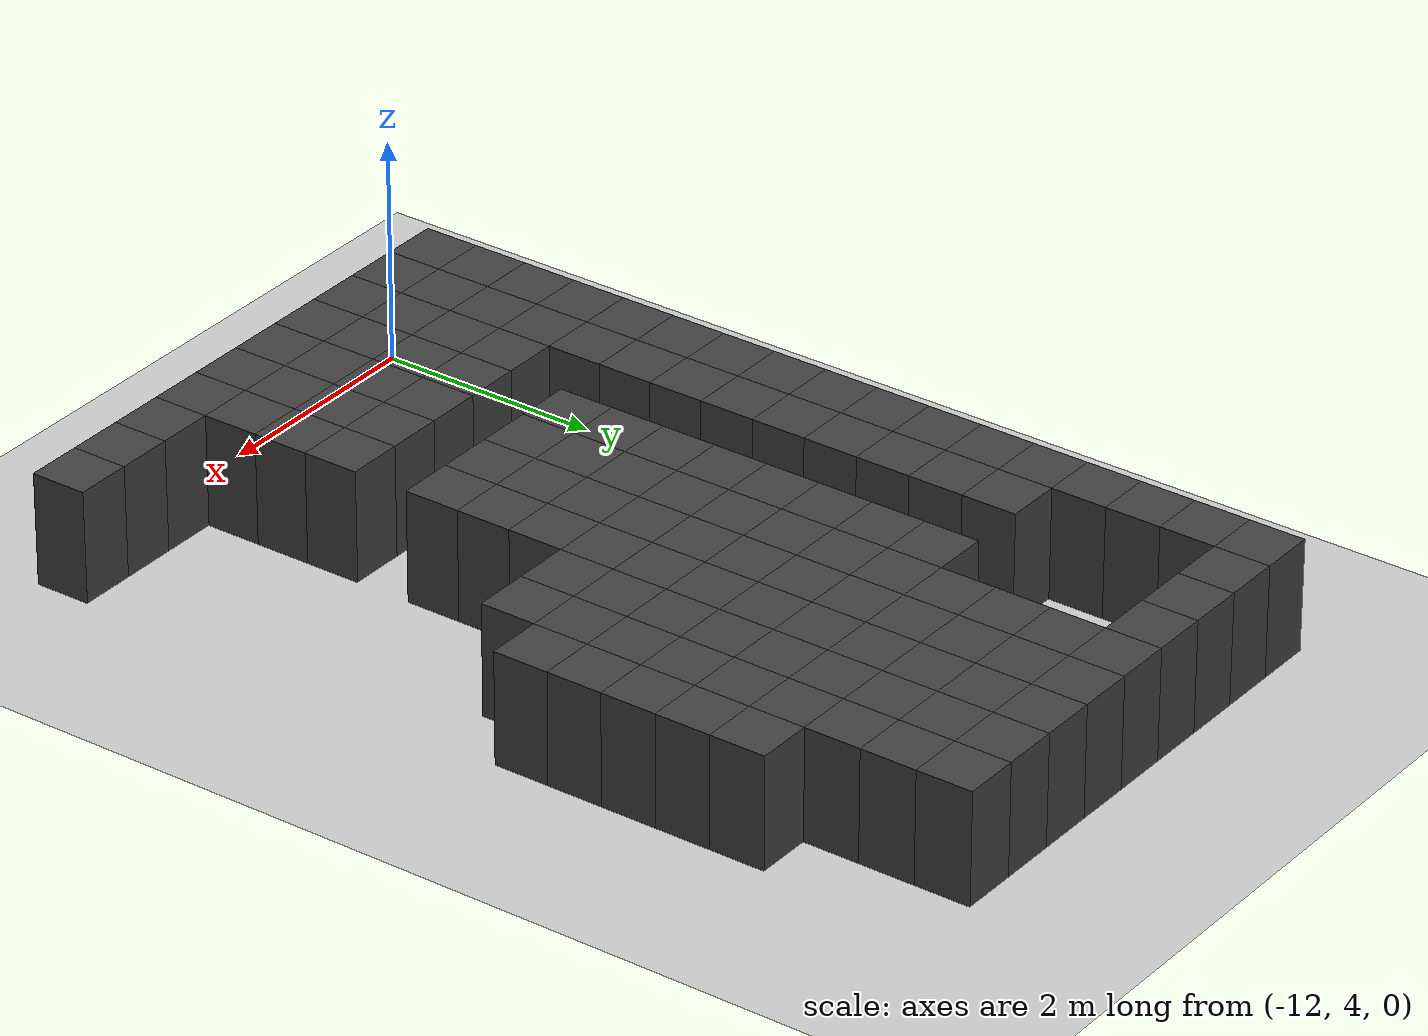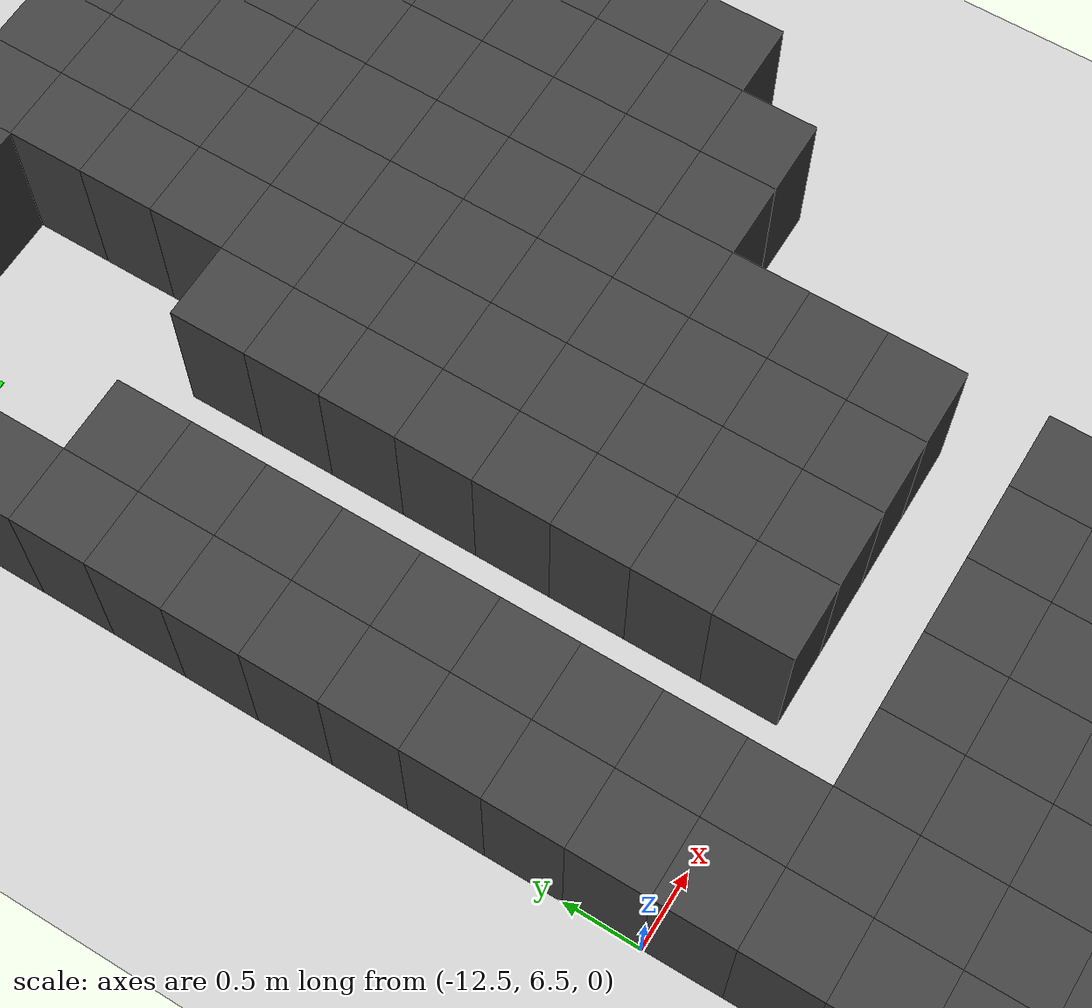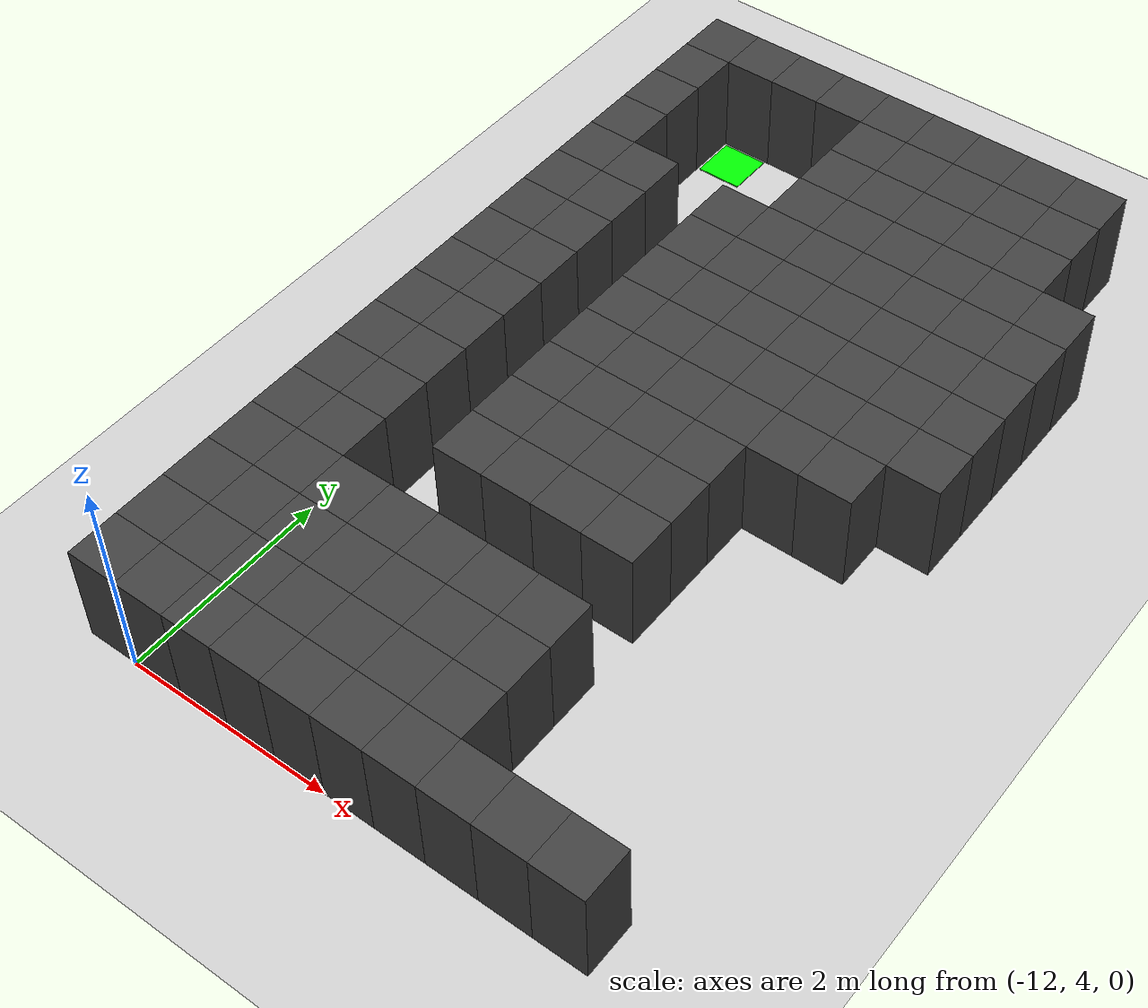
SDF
<sdf version="1.7">
 <world name="map_13994">
  <model name="ground_plane">
   <static>true</static>
   <link name="link">
    <collision name="collision">
     <geometry><plane><normal>0 0 1</normal><size>200 200</size></plane></geometry>
    </collision>
    <visual name="visual">
     <geometry><plane><normal>0 0 1</normal><size>200 200</size></plane></geometry>
     <material><ambient>0.8 0.8 0.8 1</ambient><diffuse>0.8 0.8 0.8 1</diffuse></material>
    </visual>
   </link>
  </model>
  <model name="maze_environment">
   <static>true</static>
   <link name="wall_0">
    <pose>-12.250 12.250 0.500 0 0 0</pose>
    <collision name="col"><geometry><box><size>0.5 0.5 1.0</size></box></geometry></collision>
    <visual name="vis">
     <geometry><box><size>0.5 0.5 1.0</size></box></geometry>
     <material><ambient>0.15 0.15 0.15 1</ambient><diffuse>0.25 0.25 0.25 1</diffuse></material>
    </visual>
   </link>
   <link name="wall_1">
    <pose>-11.750 12.250 0.500 0 0 0</pose>
    <collision name="col"><geometry><box><size>0.5 0.5 1.0</size></box></geometry></collision>
    <visual name="vis">
     <geometry><box><size>0.5 0.5 1.0</size></box></geometry>
     <material><ambient>0.15 0.15 0.15 1</ambient><diffuse>0.25 0.25 0.25 1</diffuse></material>
    </visual>
   </link>
   <link name="wall_2">
    <pose>-11.250 12.250 0.500 0 0 0</pose>
    <collision name="col"><geometry><box><size>0.5 0.5 1.0</size></box></geometry></collision>
    <visual name="vis">
     <geometry><box><size>0.5 0.5 1.0</size></box></geometry>
     <material><ambient>0.15 0.15 0.15 1</ambient><diffuse>0.25 0.25 0.25 1</diffuse></material>
    </visual>
   </link>
   <link name="wall_3">
    <pose>-10.750 12.250 0.500 0 0 0</pose>
    <collision name="col"><geometry><box><size>0.5 0.5 1.0</size></box></geometry></collision>
    <visual name="vis">
     <geometry><box><size>0.5 0.5 1.0</size></box></geometry>
     <material><ambient>0.15 0.15 0.15 1</ambient><diffuse>0.25 0.25 0.25 1</diffuse></material>
    </visual>
   </link>
   <link name="wall_4">
    <pose>-10.250 12.250 0.500 0 0 0</pose>
    <collision name="col"><geometry><box><size>0.5 0.5 1.0</size></box></geometry></collision>
    <visual name="vis">
     <geometry><box><size>0.5 0.5 1.0</size></box></geometry>
     <material><ambient>0.15 0.15 0.15 1</ambient><diffuse>0.25 0.25 0.25 1</diffuse></material>
    </visual>
   </link>
   <link name="wall_5">
    <pose>-9.750 12.250 0.500 0 0 0</pose>
    <collision name="col"><geometry><box><size>0.5 0.5 1.0</size></box></geometry></collision>
    <visual name="vis">
     <geometry><box><size>0.5 0.5 1.0</size></box></geometry>
     <material><ambient>0.15 0.15 0.15 1</ambient><diffuse>0.25 0.25 0.25 1</diffuse></material>
    </visual>
   </link>
   <link name="wall_6">
    <pose>-9.250 12.250 0.500 0 0 0</pose>
    <collision name="col"><geometry><box><size>0.5 0.5 1.0</size></box></geometry></collision>
    <visual name="vis">
     <geometry><box><size>0.5 0.5 1.0</size></box></geometry>
     <material><ambient>0.15 0.15 0.15 1</ambient><diffuse>0.25 0.25 0.25 1</diffuse></material>
    </visual>
   </link>
   <link name="wall_7">
    <pose>-8.750 12.250 0.500 0 0 0</pose>
    <collision name="col"><geometry><box><size>0.5 0.5 1.0</size></box></geometry></collision>
    <visual name="vis">
     <geometry><box><size>0.5 0.5 1.0</size></box></geometry>
     <material><ambient>0.15 0.15 0.15 1</ambient><diffuse>0.25 0.25 0.25 1</diffuse></material>
    </visual>
   </link>
   <link name="wall_8">
    <pose>-8.250 12.250 0.500 0 0 0</pose>
    <collision name="col"><geometry><box><size>0.5 0.5 1.0</size></box></geometry></collision>
    <visual name="vis">
     <geometry><box><size>0.5 0.5 1.0</size></box></geometry>
     <material><ambient>0.15 0.15 0.15 1</ambient><diffuse>0.25 0.25 0.25 1</diffuse></material>
    </visual>
   </link>
   <link name="wall_50">
    <pose>-12.250 11.750 0.500 0 0 0</pose>
    <collision name="col"><geometry><box><size>0.5 0.5 1.0</size></box></geometry></collision>
    <visual name="vis">
     <geometry><box><size>0.5 0.5 1.0</size></box></geometry>
     <material><ambient>0.15 0.15 0.15 1</ambient><diffuse>0.25 0.25 0.25 1</diffuse></material>
    </visual>
   </link>
   <link name="wall_51">
    <pose>-10.250 11.750 0.500 0 0 0</pose>
    <collision name="col"><geometry><box><size>0.5 0.5 1.0</size></box></geometry></collision>
    <visual name="vis">
     <geometry><box><size>0.5 0.5 1.0</size></box></geometry>
     <material><ambient>0.15 0.15 0.15 1</ambient><diffuse>0.25 0.25 0.25 1</diffuse></material>
    </visual>
   </link>
   <link name="wall_52">
    <pose>-9.750 11.750 0.500 0 0 0</pose>
    <collision name="col"><geometry><box><size>0.5 0.5 1.0</size></box></geometry></collision>
    <visual name="vis">
     <geometry><box><size>0.5 0.5 1.0</size></box></geometry>
     <material><ambient>0.15 0.15 0.15 1</ambient><diffuse>0.25 0.25 0.25 1</diffuse></material>
    </visual>
   </link>
   <link name="wall_53">
    <pose>-9.250 11.750 0.500 0 0 0</pose>
    <collision name="col"><geometry><box><size>0.5 0.5 1.0</size></box></geometry></collision>
    <visual name="vis">
     <geometry><box><size>0.5 0.5 1.0</size></box></geometry>
     <material><ambient>0.15 0.15 0.15 1</ambient><diffuse>0.25 0.25 0.25 1</diffuse></material>
    </visual>
   </link>
   <link name="wall_54">
    <pose>-8.750 11.750 0.500 0 0 0</pose>
    <collision name="col"><geometry><box><size>0.5 0.5 1.0</size></box></geometry></collision>
    <visual name="vis">
     <geometry><box><size>0.5 0.5 1.0</size></box></geometry>
     <material><ambient>0.15 0.15 0.15 1</ambient><diffuse>0.25 0.25 0.25 1</diffuse></material>
    </visual>
   </link>
   <link name="wall_55">
    <pose>-8.250 11.750 0.500 0 0 0</pose>
    <collision name="col"><geometry><box><size>0.5 0.5 1.0</size></box></geometry></collision>
    <visual name="vis">
     <geometry><box><size>0.5 0.5 1.0</size></box></geometry>
     <material><ambient>0.15 0.15 0.15 1</ambient><diffuse>0.25 0.25 0.25 1</diffuse></material>
    </visual>
   </link>
   <link name="wall_89">
    <pose>-12.250 11.250 0.500 0 0 0</pose>
    <collision name="col"><geometry><box><size>0.5 0.5 1.0</size></box></geometry></collision>
    <visual name="vis">
     <geometry><box><size>0.5 0.5 1.0</size></box></geometry>
     <material><ambient>0.15 0.15 0.15 1</ambient><diffuse>0.25 0.25 0.25 1</diffuse></material>
    </visual>
   </link>
   <link name="wall_90">
    <pose>-10.250 11.250 0.500 0 0 0</pose>
    <collision name="col"><geometry><box><size>0.5 0.5 1.0</size></box></geometry></collision>
    <visual name="vis">
     <geometry><box><size>0.5 0.5 1.0</size></box></geometry>
     <material><ambient>0.15 0.15 0.15 1</ambient><diffuse>0.25 0.25 0.25 1</diffuse></material>
    </visual>
   </link>
   <link name="wall_91">
    <pose>-9.750 11.250 0.500 0 0 0</pose>
    <collision name="col"><geometry><box><size>0.5 0.5 1.0</size></box></geometry></collision>
    <visual name="vis">
     <geometry><box><size>0.5 0.5 1.0</size></box></geometry>
     <material><ambient>0.15 0.15 0.15 1</ambient><diffuse>0.25 0.25 0.25 1</diffuse></material>
    </visual>
   </link>
   <link name="wall_92">
    <pose>-9.250 11.250 0.500 0 0 0</pose>
    <collision name="col"><geometry><box><size>0.5 0.5 1.0</size></box></geometry></collision>
    <visual name="vis">
     <geometry><box><size>0.5 0.5 1.0</size></box></geometry>
     <material><ambient>0.15 0.15 0.15 1</ambient><diffuse>0.25 0.25 0.25 1</diffuse></material>
    </visual>
   </link>
   <link name="wall_93">
    <pose>-8.750 11.250 0.500 0 0 0</pose>
    <collision name="col"><geometry><box><size>0.5 0.5 1.0</size></box></geometry></collision>
    <visual name="vis">
     <geometry><box><size>0.5 0.5 1.0</size></box></geometry>
     <material><ambient>0.15 0.15 0.15 1</ambient><diffuse>0.25 0.25 0.25 1</diffuse></material>
    </visual>
   </link>
   <link name="wall_94">
    <pose>-8.250 11.250 0.500 0 0 0</pose>
    <collision name="col"><geometry><box><size>0.5 0.5 1.0</size></box></geometry></collision>
    <visual name="vis">
     <geometry><box><size>0.5 0.5 1.0</size></box></geometry>
     <material><ambient>0.15 0.15 0.15 1</ambient><diffuse>0.25 0.25 0.25 1</diffuse></material>
    </visual>
   </link>
   <link name="wall_114">
    <pose>-12.250 10.750 0.500 0 0 0</pose>
    <collision name="col"><geometry><box><size>0.5 0.5 1.0</size></box></geometry></collision>
    <visual name="vis">
     <geometry><box><size>0.5 0.5 1.0</size></box></geometry>
     <material><ambient>0.15 0.15 0.15 1</ambient><diffuse>0.25 0.25 0.25 1</diffuse></material>
    </visual>
   </link>
   <link name="wall_115">
    <pose>-10.250 10.750 0.500 0 0 0</pose>
    <collision name="col"><geometry><box><size>0.5 0.5 1.0</size></box></geometry></collision>
    <visual name="vis">
     <geometry><box><size>0.5 0.5 1.0</size></box></geometry>
     <material><ambient>0.15 0.15 0.15 1</ambient><diffuse>0.25 0.25 0.25 1</diffuse></material>
    </visual>
   </link>
   <link name="wall_116">
    <pose>-9.750 10.750 0.500 0 0 0</pose>
    <collision name="col"><geometry><box><size>0.5 0.5 1.0</size></box></geometry></collision>
    <visual name="vis">
     <geometry><box><size>0.5 0.5 1.0</size></box></geometry>
     <material><ambient>0.15 0.15 0.15 1</ambient><diffuse>0.25 0.25 0.25 1</diffuse></material>
    </visual>
   </link>
   <link name="wall_117">
    <pose>-9.250 10.750 0.500 0 0 0</pose>
    <collision name="col"><geometry><box><size>0.5 0.5 1.0</size></box></geometry></collision>
    <visual name="vis">
     <geometry><box><size>0.5 0.5 1.0</size></box></geometry>
     <material><ambient>0.15 0.15 0.15 1</ambient><diffuse>0.25 0.25 0.25 1</diffuse></material>
    </visual>
   </link>
   <link name="wall_118">
    <pose>-8.750 10.750 0.500 0 0 0</pose>
    <collision name="col"><geometry><box><size>0.5 0.5 1.0</size></box></geometry></collision>
    <visual name="vis">
     <geometry><box><size>0.5 0.5 1.0</size></box></geometry>
     <material><ambient>0.15 0.15 0.15 1</ambient><diffuse>0.25 0.25 0.25 1</diffuse></material>
    </visual>
   </link>
   <link name="wall_119">
    <pose>-8.250 10.750 0.500 0 0 0</pose>
    <collision name="col"><geometry><box><size>0.5 0.5 1.0</size></box></geometry></collision>
    <visual name="vis">
     <geometry><box><size>0.5 0.5 1.0</size></box></geometry>
     <material><ambient>0.15 0.15 0.15 1</ambient><diffuse>0.25 0.25 0.25 1</diffuse></material>
    </visual>
   </link>
   <link name="wall_120">
    <pose>-7.750 10.750 0.500 0 0 0</pose>
    <collision name="col"><geometry><box><size>0.5 0.5 1.0</size></box></geometry></collision>
    <visual name="vis">
     <geometry><box><size>0.5 0.5 1.0</size></box></geometry>
     <material><ambient>0.15 0.15 0.15 1</ambient><diffuse>0.25 0.25 0.25 1</diffuse></material>
    </visual>
   </link>
   <link name="wall_139">
    <pose>-12.250 10.250 0.500 0 0 0</pose>
    <collision name="col"><geometry><box><size>0.5 0.5 1.0</size></box></geometry></collision>
    <visual name="vis">
     <geometry><box><size>0.5 0.5 1.0</size></box></geometry>
     <material><ambient>0.15 0.15 0.15 1</ambient><diffuse>0.25 0.25 0.25 1</diffuse></material>
    </visual>
   </link>
   <link name="wall_140">
    <pose>-11.750 10.250 0.500 0 0 0</pose>
    <collision name="col"><geometry><box><size>0.5 0.5 1.0</size></box></geometry></collision>
    <visual name="vis">
     <geometry><box><size>0.5 0.5 1.0</size></box></geometry>
     <material><ambient>0.15 0.15 0.15 1</ambient><diffuse>0.25 0.25 0.25 1</diffuse></material>
    </visual>
   </link>
   <link name="wall_141">
    <pose>-10.750 10.250 0.500 0 0 0</pose>
    <collision name="col"><geometry><box><size>0.5 0.5 1.0</size></box></geometry></collision>
    <visual name="vis">
     <geometry><box><size>0.5 0.5 1.0</size></box></geometry>
     <material><ambient>0.15 0.15 0.15 1</ambient><diffuse>0.25 0.25 0.25 1</diffuse></material>
    </visual>
   </link>
   <link name="wall_142">
    <pose>-10.250 10.250 0.500 0 0 0</pose>
    <collision name="col"><geometry><box><size>0.5 0.5 1.0</size></box></geometry></collision>
    <visual name="vis">
     <geometry><box><size>0.5 0.5 1.0</size></box></geometry>
     <material><ambient>0.15 0.15 0.15 1</ambient><diffuse>0.25 0.25 0.25 1</diffuse></material>
    </visual>
   </link>
   <link name="wall_143">
    <pose>-9.750 10.250 0.500 0 0 0</pose>
    <collision name="col"><geometry><box><size>0.5 0.5 1.0</size></box></geometry></collision>
    <visual name="vis">
     <geometry><box><size>0.5 0.5 1.0</size></box></geometry>
     <material><ambient>0.15 0.15 0.15 1</ambient><diffuse>0.25 0.25 0.25 1</diffuse></material>
    </visual>
   </link>
   <link name="wall_144">
    <pose>-9.250 10.250 0.500 0 0 0</pose>
    <collision name="col"><geometry><box><size>0.5 0.5 1.0</size></box></geometry></collision>
    <visual name="vis">
     <geometry><box><size>0.5 0.5 1.0</size></box></geometry>
     <material><ambient>0.15 0.15 0.15 1</ambient><diffuse>0.25 0.25 0.25 1</diffuse></material>
    </visual>
   </link>
   <link name="wall_145">
    <pose>-8.750 10.250 0.500 0 0 0</pose>
    <collision name="col"><geometry><box><size>0.5 0.5 1.0</size></box></geometry></collision>
    <visual name="vis">
     <geometry><box><size>0.5 0.5 1.0</size></box></geometry>
     <material><ambient>0.15 0.15 0.15 1</ambient><diffuse>0.25 0.25 0.25 1</diffuse></material>
    </visual>
   </link>
   <link name="wall_146">
    <pose>-8.250 10.250 0.500 0 0 0</pose>
    <collision name="col"><geometry><box><size>0.5 0.5 1.0</size></box></geometry></collision>
    <visual name="vis">
     <geometry><box><size>0.5 0.5 1.0</size></box></geometry>
     <material><ambient>0.15 0.15 0.15 1</ambient><diffuse>0.25 0.25 0.25 1</diffuse></material>
    </visual>
   </link>
   <link name="wall_147">
    <pose>-7.750 10.250 0.500 0 0 0</pose>
    <collision name="col"><geometry><box><size>0.5 0.5 1.0</size></box></geometry></collision>
    <visual name="vis">
     <geometry><box><size>0.5 0.5 1.0</size></box></geometry>
     <material><ambient>0.15 0.15 0.15 1</ambient><diffuse>0.25 0.25 0.25 1</diffuse></material>
    </visual>
   </link>
   <link name="wall_162">
    <pose>-12.250 9.750 0.500 0 0 0</pose>
    <collision name="col"><geometry><box><size>0.5 0.5 1.0</size></box></geometry></collision>
    <visual name="vis">
     <geometry><box><size>0.5 0.5 1.0</size></box></geometry>
     <material><ambient>0.15 0.15 0.15 1</ambient><diffuse>0.25 0.25 0.25 1</diffuse></material>
    </visual>
   </link>
   <link name="wall_163">
    <pose>-11.750 9.750 0.500 0 0 0</pose>
    <collision name="col"><geometry><box><size>0.5 0.5 1.0</size></box></geometry></collision>
    <visual name="vis">
     <geometry><box><size>0.5 0.5 1.0</size></box></geometry>
     <material><ambient>0.15 0.15 0.15 1</ambient><diffuse>0.25 0.25 0.25 1</diffuse></material>
    </visual>
   </link>
   <link name="wall_164">
    <pose>-10.750 9.750 0.500 0 0 0</pose>
    <collision name="col"><geometry><box><size>0.5 0.5 1.0</size></box></geometry></collision>
    <visual name="vis">
     <geometry><box><size>0.5 0.5 1.0</size></box></geometry>
     <material><ambient>0.15 0.15 0.15 1</ambient><diffuse>0.25 0.25 0.25 1</diffuse></material>
    </visual>
   </link>
   <link name="wall_165">
    <pose>-10.250 9.750 0.500 0 0 0</pose>
    <collision name="col"><geometry><box><size>0.5 0.5 1.0</size></box></geometry></collision>
    <visual name="vis">
     <geometry><box><size>0.5 0.5 1.0</size></box></geometry>
     <material><ambient>0.15 0.15 0.15 1</ambient><diffuse>0.25 0.25 0.25 1</diffuse></material>
    </visual>
   </link>
   <link name="wall_166">
    <pose>-9.750 9.750 0.500 0 0 0</pose>
    <collision name="col"><geometry><box><size>0.5 0.5 1.0</size></box></geometry></collision>
    <visual name="vis">
     <geometry><box><size>0.5 0.5 1.0</size></box></geometry>
     <material><ambient>0.15 0.15 0.15 1</ambient><diffuse>0.25 0.25 0.25 1</diffuse></material>
    </visual>
   </link>
   <link name="wall_167">
    <pose>-9.250 9.750 0.500 0 0 0</pose>
    <collision name="col"><geometry><box><size>0.5 0.5 1.0</size></box></geometry></collision>
    <visual name="vis">
     <geometry><box><size>0.5 0.5 1.0</size></box></geometry>
     <material><ambient>0.15 0.15 0.15 1</ambient><diffuse>0.25 0.25 0.25 1</diffuse></material>
    </visual>
   </link>
   <link name="wall_168">
    <pose>-8.750 9.750 0.500 0 0 0</pose>
    <collision name="col"><geometry><box><size>0.5 0.5 1.0</size></box></geometry></collision>
    <visual name="vis">
     <geometry><box><size>0.5 0.5 1.0</size></box></geometry>
     <material><ambient>0.15 0.15 0.15 1</ambient><diffuse>0.25 0.25 0.25 1</diffuse></material>
    </visual>
   </link>
   <link name="wall_169">
    <pose>-8.250 9.750 0.500 0 0 0</pose>
    <collision name="col"><geometry><box><size>0.5 0.5 1.0</size></box></geometry></collision>
    <visual name="vis">
     <geometry><box><size>0.5 0.5 1.0</size></box></geometry>
     <material><ambient>0.15 0.15 0.15 1</ambient><diffuse>0.25 0.25 0.25 1</diffuse></material>
    </visual>
   </link>
   <link name="wall_170">
    <pose>-7.750 9.750 0.500 0 0 0</pose>
    <collision name="col"><geometry><box><size>0.5 0.5 1.0</size></box></geometry></collision>
    <visual name="vis">
     <geometry><box><size>0.5 0.5 1.0</size></box></geometry>
     <material><ambient>0.15 0.15 0.15 1</ambient><diffuse>0.25 0.25 0.25 1</diffuse></material>
    </visual>
   </link>
   <link name="wall_180">
    <pose>-12.250 9.250 0.500 0 0 0</pose>
    <collision name="col"><geometry><box><size>0.5 0.5 1.0</size></box></geometry></collision>
    <visual name="vis">
     <geometry><box><size>0.5 0.5 1.0</size></box></geometry>
     <material><ambient>0.15 0.15 0.15 1</ambient><diffuse>0.25 0.25 0.25 1</diffuse></material>
    </visual>
   </link>
   <link name="wall_181">
    <pose>-11.750 9.250 0.500 0 0 0</pose>
    <collision name="col"><geometry><box><size>0.5 0.5 1.0</size></box></geometry></collision>
    <visual name="vis">
     <geometry><box><size>0.5 0.5 1.0</size></box></geometry>
     <material><ambient>0.15 0.15 0.15 1</ambient><diffuse>0.25 0.25 0.25 1</diffuse></material>
    </visual>
   </link>
   <link name="wall_182">
    <pose>-10.750 9.250 0.500 0 0 0</pose>
    <collision name="col"><geometry><box><size>0.5 0.5 1.0</size></box></geometry></collision>
    <visual name="vis">
     <geometry><box><size>0.5 0.5 1.0</size></box></geometry>
     <material><ambient>0.15 0.15 0.15 1</ambient><diffuse>0.25 0.25 0.25 1</diffuse></material>
    </visual>
   </link>
   <link name="wall_183">
    <pose>-10.250 9.250 0.500 0 0 0</pose>
    <collision name="col"><geometry><box><size>0.5 0.5 1.0</size></box></geometry></collision>
    <visual name="vis">
     <geometry><box><size>0.5 0.5 1.0</size></box></geometry>
     <material><ambient>0.15 0.15 0.15 1</ambient><diffuse>0.25 0.25 0.25 1</diffuse></material>
    </visual>
   </link>
   <link name="wall_184">
    <pose>-9.750 9.250 0.500 0 0 0</pose>
    <collision name="col"><geometry><box><size>0.5 0.5 1.0</size></box></geometry></collision>
    <visual name="vis">
     <geometry><box><size>0.5 0.5 1.0</size></box></geometry>
     <material><ambient>0.15 0.15 0.15 1</ambient><diffuse>0.25 0.25 0.25 1</diffuse></material>
    </visual>
   </link>
   <link name="wall_185">
    <pose>-9.250 9.250 0.500 0 0 0</pose>
    <collision name="col"><geometry><box><size>0.5 0.5 1.0</size></box></geometry></collision>
    <visual name="vis">
     <geometry><box><size>0.5 0.5 1.0</size></box></geometry>
     <material><ambient>0.15 0.15 0.15 1</ambient><diffuse>0.25 0.25 0.25 1</diffuse></material>
    </visual>
   </link>
   <link name="wall_186">
    <pose>-8.750 9.250 0.500 0 0 0</pose>
    <collision name="col"><geometry><box><size>0.5 0.5 1.0</size></box></geometry></collision>
    <visual name="vis">
     <geometry><box><size>0.5 0.5 1.0</size></box></geometry>
     <material><ambient>0.15 0.15 0.15 1</ambient><diffuse>0.25 0.25 0.25 1</diffuse></material>
    </visual>
   </link>
   <link name="wall_187">
    <pose>-8.250 9.250 0.500 0 0 0</pose>
    <collision name="col"><geometry><box><size>0.5 0.5 1.0</size></box></geometry></collision>
    <visual name="vis">
     <geometry><box><size>0.5 0.5 1.0</size></box></geometry>
     <material><ambient>0.15 0.15 0.15 1</ambient><diffuse>0.25 0.25 0.25 1</diffuse></material>
    </visual>
   </link>
   <link name="wall_188">
    <pose>-7.750 9.250 0.500 0 0 0</pose>
    <collision name="col"><geometry><box><size>0.5 0.5 1.0</size></box></geometry></collision>
    <visual name="vis">
     <geometry><box><size>0.5 0.5 1.0</size></box></geometry>
     <material><ambient>0.15 0.15 0.15 1</ambient><diffuse>0.25 0.25 0.25 1</diffuse></material>
    </visual>
   </link>
   <link name="wall_202">
    <pose>-12.250 8.750 0.500 0 0 0</pose>
    <collision name="col"><geometry><box><size>0.5 0.5 1.0</size></box></geometry></collision>
    <visual name="vis">
     <geometry><box><size>0.5 0.5 1.0</size></box></geometry>
     <material><ambient>0.15 0.15 0.15 1</ambient><diffuse>0.25 0.25 0.25 1</diffuse></material>
    </visual>
   </link>
   <link name="wall_203">
    <pose>-11.750 8.750 0.500 0 0 0</pose>
    <collision name="col"><geometry><box><size>0.5 0.5 1.0</size></box></geometry></collision>
    <visual name="vis">
     <geometry><box><size>0.5 0.5 1.0</size></box></geometry>
     <material><ambient>0.15 0.15 0.15 1</ambient><diffuse>0.25 0.25 0.25 1</diffuse></material>
    </visual>
   </link>
   <link name="wall_204">
    <pose>-10.750 8.750 0.500 0 0 0</pose>
    <collision name="col"><geometry><box><size>0.5 0.5 1.0</size></box></geometry></collision>
    <visual name="vis">
     <geometry><box><size>0.5 0.5 1.0</size></box></geometry>
     <material><ambient>0.15 0.15 0.15 1</ambient><diffuse>0.25 0.25 0.25 1</diffuse></material>
    </visual>
   </link>
   <link name="wall_205">
    <pose>-10.250 8.750 0.500 0 0 0</pose>
    <collision name="col"><geometry><box><size>0.5 0.5 1.0</size></box></geometry></collision>
    <visual name="vis">
     <geometry><box><size>0.5 0.5 1.0</size></box></geometry>
     <material><ambient>0.15 0.15 0.15 1</ambient><diffuse>0.25 0.25 0.25 1</diffuse></material>
    </visual>
   </link>
   <link name="wall_206">
    <pose>-9.750 8.750 0.500 0 0 0</pose>
    <collision name="col"><geometry><box><size>0.5 0.5 1.0</size></box></geometry></collision>
    <visual name="vis">
     <geometry><box><size>0.5 0.5 1.0</size></box></geometry>
     <material><ambient>0.15 0.15 0.15 1</ambient><diffuse>0.25 0.25 0.25 1</diffuse></material>
    </visual>
   </link>
   <link name="wall_207">
    <pose>-9.250 8.750 0.500 0 0 0</pose>
    <collision name="col"><geometry><box><size>0.5 0.5 1.0</size></box></geometry></collision>
    <visual name="vis">
     <geometry><box><size>0.5 0.5 1.0</size></box></geometry>
     <material><ambient>0.15 0.15 0.15 1</ambient><diffuse>0.25 0.25 0.25 1</diffuse></material>
    </visual>
   </link>
   <link name="wall_208">
    <pose>-8.750 8.750 0.500 0 0 0</pose>
    <collision name="col"><geometry><box><size>0.5 0.5 1.0</size></box></geometry></collision>
    <visual name="vis">
     <geometry><box><size>0.5 0.5 1.0</size></box></geometry>
     <material><ambient>0.15 0.15 0.15 1</ambient><diffuse>0.25 0.25 0.25 1</diffuse></material>
    </visual>
   </link>
   <link name="wall_209">
    <pose>-8.250 8.750 0.500 0 0 0</pose>
    <collision name="col"><geometry><box><size>0.5 0.5 1.0</size></box></geometry></collision>
    <visual name="vis">
     <geometry><box><size>0.5 0.5 1.0</size></box></geometry>
     <material><ambient>0.15 0.15 0.15 1</ambient><diffuse>0.25 0.25 0.25 1</diffuse></material>
    </visual>
   </link>
   <link name="wall_210">
    <pose>-7.750 8.750 0.500 0 0 0</pose>
    <collision name="col"><geometry><box><size>0.5 0.5 1.0</size></box></geometry></collision>
    <visual name="vis">
     <geometry><box><size>0.5 0.5 1.0</size></box></geometry>
     <material><ambient>0.15 0.15 0.15 1</ambient><diffuse>0.25 0.25 0.25 1</diffuse></material>
    </visual>
   </link>
   <link name="wall_219">
    <pose>-12.250 8.250 0.500 0 0 0</pose>
    <collision name="col"><geometry><box><size>0.5 0.5 1.0</size></box></geometry></collision>
    <visual name="vis">
     <geometry><box><size>0.5 0.5 1.0</size></box></geometry>
     <material><ambient>0.15 0.15 0.15 1</ambient><diffuse>0.25 0.25 0.25 1</diffuse></material>
    </visual>
   </link>
   <link name="wall_220">
    <pose>-11.750 8.250 0.500 0 0 0</pose>
    <collision name="col"><geometry><box><size>0.5 0.5 1.0</size></box></geometry></collision>
    <visual name="vis">
     <geometry><box><size>0.5 0.5 1.0</size></box></geometry>
     <material><ambient>0.15 0.15 0.15 1</ambient><diffuse>0.25 0.25 0.25 1</diffuse></material>
    </visual>
   </link>
   <link name="wall_221">
    <pose>-10.750 8.250 0.500 0 0 0</pose>
    <collision name="col"><geometry><box><size>0.5 0.5 1.0</size></box></geometry></collision>
    <visual name="vis">
     <geometry><box><size>0.5 0.5 1.0</size></box></geometry>
     <material><ambient>0.15 0.15 0.15 1</ambient><diffuse>0.25 0.25 0.25 1</diffuse></material>
    </visual>
   </link>
   <link name="wall_222">
    <pose>-10.250 8.250 0.500 0 0 0</pose>
    <collision name="col"><geometry><box><size>0.5 0.5 1.0</size></box></geometry></collision>
    <visual name="vis">
     <geometry><box><size>0.5 0.5 1.0</size></box></geometry>
     <material><ambient>0.15 0.15 0.15 1</ambient><diffuse>0.25 0.25 0.25 1</diffuse></material>
    </visual>
   </link>
   <link name="wall_223">
    <pose>-9.750 8.250 0.500 0 0 0</pose>
    <collision name="col"><geometry><box><size>0.5 0.5 1.0</size></box></geometry></collision>
    <visual name="vis">
     <geometry><box><size>0.5 0.5 1.0</size></box></geometry>
     <material><ambient>0.15 0.15 0.15 1</ambient><diffuse>0.25 0.25 0.25 1</diffuse></material>
    </visual>
   </link>
   <link name="wall_224">
    <pose>-9.250 8.250 0.500 0 0 0</pose>
    <collision name="col"><geometry><box><size>0.5 0.5 1.0</size></box></geometry></collision>
    <visual name="vis">
     <geometry><box><size>0.5 0.5 1.0</size></box></geometry>
     <material><ambient>0.15 0.15 0.15 1</ambient><diffuse>0.25 0.25 0.25 1</diffuse></material>
    </visual>
   </link>
   <link name="wall_225">
    <pose>-8.750 8.250 0.500 0 0 0</pose>
    <collision name="col"><geometry><box><size>0.5 0.5 1.0</size></box></geometry></collision>
    <visual name="vis">
     <geometry><box><size>0.5 0.5 1.0</size></box></geometry>
     <material><ambient>0.15 0.15 0.15 1</ambient><diffuse>0.25 0.25 0.25 1</diffuse></material>
    </visual>
   </link>
   <link name="wall_226">
    <pose>-8.250 8.250 0.500 0 0 0</pose>
    <collision name="col"><geometry><box><size>0.5 0.5 1.0</size></box></geometry></collision>
    <visual name="vis">
     <geometry><box><size>0.5 0.5 1.0</size></box></geometry>
     <material><ambient>0.15 0.15 0.15 1</ambient><diffuse>0.25 0.25 0.25 1</diffuse></material>
    </visual>
   </link>
   <link name="wall_244">
    <pose>-12.250 7.750 0.500 0 0 0</pose>
    <collision name="col"><geometry><box><size>0.5 0.5 1.0</size></box></geometry></collision>
    <visual name="vis">
     <geometry><box><size>0.5 0.5 1.0</size></box></geometry>
     <material><ambient>0.15 0.15 0.15 1</ambient><diffuse>0.25 0.25 0.25 1</diffuse></material>
    </visual>
   </link>
   <link name="wall_245">
    <pose>-11.750 7.750 0.500 0 0 0</pose>
    <collision name="col"><geometry><box><size>0.5 0.5 1.0</size></box></geometry></collision>
    <visual name="vis">
     <geometry><box><size>0.5 0.5 1.0</size></box></geometry>
     <material><ambient>0.15 0.15 0.15 1</ambient><diffuse>0.25 0.25 0.25 1</diffuse></material>
    </visual>
   </link>
   <link name="wall_246">
    <pose>-10.750 7.750 0.500 0 0 0</pose>
    <collision name="col"><geometry><box><size>0.5 0.5 1.0</size></box></geometry></collision>
    <visual name="vis">
     <geometry><box><size>0.5 0.5 1.0</size></box></geometry>
     <material><ambient>0.15 0.15 0.15 1</ambient><diffuse>0.25 0.25 0.25 1</diffuse></material>
    </visual>
   </link>
   <link name="wall_247">
    <pose>-10.250 7.750 0.500 0 0 0</pose>
    <collision name="col"><geometry><box><size>0.5 0.5 1.0</size></box></geometry></collision>
    <visual name="vis">
     <geometry><box><size>0.5 0.5 1.0</size></box></geometry>
     <material><ambient>0.15 0.15 0.15 1</ambient><diffuse>0.25 0.25 0.25 1</diffuse></material>
    </visual>
   </link>
   <link name="wall_248">
    <pose>-9.750 7.750 0.500 0 0 0</pose>
    <collision name="col"><geometry><box><size>0.5 0.5 1.0</size></box></geometry></collision>
    <visual name="vis">
     <geometry><box><size>0.5 0.5 1.0</size></box></geometry>
     <material><ambient>0.15 0.15 0.15 1</ambient><diffuse>0.25 0.25 0.25 1</diffuse></material>
    </visual>
   </link>
   <link name="wall_249">
    <pose>-9.250 7.750 0.500 0 0 0</pose>
    <collision name="col"><geometry><box><size>0.5 0.5 1.0</size></box></geometry></collision>
    <visual name="vis">
     <geometry><box><size>0.5 0.5 1.0</size></box></geometry>
     <material><ambient>0.15 0.15 0.15 1</ambient><diffuse>0.25 0.25 0.25 1</diffuse></material>
    </visual>
   </link>
   <link name="wall_274">
    <pose>-12.250 7.250 0.500 0 0 0</pose>
    <collision name="col"><geometry><box><size>0.5 0.5 1.0</size></box></geometry></collision>
    <visual name="vis">
     <geometry><box><size>0.5 0.5 1.0</size></box></geometry>
     <material><ambient>0.15 0.15 0.15 1</ambient><diffuse>0.25 0.25 0.25 1</diffuse></material>
    </visual>
   </link>
   <link name="wall_275">
    <pose>-11.750 7.250 0.500 0 0 0</pose>
    <collision name="col"><geometry><box><size>0.5 0.5 1.0</size></box></geometry></collision>
    <visual name="vis">
     <geometry><box><size>0.5 0.5 1.0</size></box></geometry>
     <material><ambient>0.15 0.15 0.15 1</ambient><diffuse>0.25 0.25 0.25 1</diffuse></material>
    </visual>
   </link>
   <link name="wall_276">
    <pose>-10.750 7.250 0.500 0 0 0</pose>
    <collision name="col"><geometry><box><size>0.5 0.5 1.0</size></box></geometry></collision>
    <visual name="vis">
     <geometry><box><size>0.5 0.5 1.0</size></box></geometry>
     <material><ambient>0.15 0.15 0.15 1</ambient><diffuse>0.25 0.25 0.25 1</diffuse></material>
    </visual>
   </link>
   <link name="wall_277">
    <pose>-10.250 7.250 0.500 0 0 0</pose>
    <collision name="col"><geometry><box><size>0.5 0.5 1.0</size></box></geometry></collision>
    <visual name="vis">
     <geometry><box><size>0.5 0.5 1.0</size></box></geometry>
     <material><ambient>0.15 0.15 0.15 1</ambient><diffuse>0.25 0.25 0.25 1</diffuse></material>
    </visual>
   </link>
   <link name="wall_278">
    <pose>-9.750 7.250 0.500 0 0 0</pose>
    <collision name="col"><geometry><box><size>0.5 0.5 1.0</size></box></geometry></collision>
    <visual name="vis">
     <geometry><box><size>0.5 0.5 1.0</size></box></geometry>
     <material><ambient>0.15 0.15 0.15 1</ambient><diffuse>0.25 0.25 0.25 1</diffuse></material>
    </visual>
   </link>
   <link name="wall_279">
    <pose>-9.250 7.250 0.500 0 0 0</pose>
    <collision name="col"><geometry><box><size>0.5 0.5 1.0</size></box></geometry></collision>
    <visual name="vis">
     <geometry><box><size>0.5 0.5 1.0</size></box></geometry>
     <material><ambient>0.15 0.15 0.15 1</ambient><diffuse>0.25 0.25 0.25 1</diffuse></material>
    </visual>
   </link>
   <link name="wall_304">
    <pose>-12.250 6.750 0.500 0 0 0</pose>
    <collision name="col"><geometry><box><size>0.5 0.5 1.0</size></box></geometry></collision>
    <visual name="vis">
     <geometry><box><size>0.5 0.5 1.0</size></box></geometry>
     <material><ambient>0.15 0.15 0.15 1</ambient><diffuse>0.25 0.25 0.25 1</diffuse></material>
    </visual>
   </link>
   <link name="wall_305">
    <pose>-11.750 6.750 0.500 0 0 0</pose>
    <collision name="col"><geometry><box><size>0.5 0.5 1.0</size></box></geometry></collision>
    <visual name="vis">
     <geometry><box><size>0.5 0.5 1.0</size></box></geometry>
     <material><ambient>0.15 0.15 0.15 1</ambient><diffuse>0.25 0.25 0.25 1</diffuse></material>
    </visual>
   </link>
   <link name="wall_306">
    <pose>-10.750 6.750 0.500 0 0 0</pose>
    <collision name="col"><geometry><box><size>0.5 0.5 1.0</size></box></geometry></collision>
    <visual name="vis">
     <geometry><box><size>0.5 0.5 1.0</size></box></geometry>
     <material><ambient>0.15 0.15 0.15 1</ambient><diffuse>0.25 0.25 0.25 1</diffuse></material>
    </visual>
   </link>
   <link name="wall_307">
    <pose>-10.250 6.750 0.500 0 0 0</pose>
    <collision name="col"><geometry><box><size>0.5 0.5 1.0</size></box></geometry></collision>
    <visual name="vis">
     <geometry><box><size>0.5 0.5 1.0</size></box></geometry>
     <material><ambient>0.15 0.15 0.15 1</ambient><diffuse>0.25 0.25 0.25 1</diffuse></material>
    </visual>
   </link>
   <link name="wall_308">
    <pose>-9.750 6.750 0.500 0 0 0</pose>
    <collision name="col"><geometry><box><size>0.5 0.5 1.0</size></box></geometry></collision>
    <visual name="vis">
     <geometry><box><size>0.5 0.5 1.0</size></box></geometry>
     <material><ambient>0.15 0.15 0.15 1</ambient><diffuse>0.25 0.25 0.25 1</diffuse></material>
    </visual>
   </link>
   <link name="wall_309">
    <pose>-9.250 6.750 0.500 0 0 0</pose>
    <collision name="col"><geometry><box><size>0.5 0.5 1.0</size></box></geometry></collision>
    <visual name="vis">
     <geometry><box><size>0.5 0.5 1.0</size></box></geometry>
     <material><ambient>0.15 0.15 0.15 1</ambient><diffuse>0.25 0.25 0.25 1</diffuse></material>
    </visual>
   </link>
   <link name="wall_341">
    <pose>-12.250 6.250 0.500 0 0 0</pose>
    <collision name="col"><geometry><box><size>0.5 0.5 1.0</size></box></geometry></collision>
    <visual name="vis">
     <geometry><box><size>0.5 0.5 1.0</size></box></geometry>
     <material><ambient>0.15 0.15 0.15 1</ambient><diffuse>0.25 0.25 0.25 1</diffuse></material>
    </visual>
   </link>
   <link name="wall_342">
    <pose>-11.750 6.250 0.500 0 0 0</pose>
    <collision name="col"><geometry><box><size>0.5 0.5 1.0</size></box></geometry></collision>
    <visual name="vis">
     <geometry><box><size>0.5 0.5 1.0</size></box></geometry>
     <material><ambient>0.15 0.15 0.15 1</ambient><diffuse>0.25 0.25 0.25 1</diffuse></material>
    </visual>
   </link>
   <link name="wall_374">
    <pose>-12.250 5.750 0.500 0 0 0</pose>
    <collision name="col"><geometry><box><size>0.5 0.5 1.0</size></box></geometry></collision>
    <visual name="vis">
     <geometry><box><size>0.5 0.5 1.0</size></box></geometry>
     <material><ambient>0.15 0.15 0.15 1</ambient><diffuse>0.25 0.25 0.25 1</diffuse></material>
    </visual>
   </link>
   <link name="wall_375">
    <pose>-11.750 5.750 0.500 0 0 0</pose>
    <collision name="col"><geometry><box><size>0.5 0.5 1.0</size></box></geometry></collision>
    <visual name="vis">
     <geometry><box><size>0.5 0.5 1.0</size></box></geometry>
     <material><ambient>0.15 0.15 0.15 1</ambient><diffuse>0.25 0.25 0.25 1</diffuse></material>
    </visual>
   </link>
   <link name="wall_376">
    <pose>-11.250 5.750 0.500 0 0 0</pose>
    <collision name="col"><geometry><box><size>0.5 0.5 1.0</size></box></geometry></collision>
    <visual name="vis">
     <geometry><box><size>0.5 0.5 1.0</size></box></geometry>
     <material><ambient>0.15 0.15 0.15 1</ambient><diffuse>0.25 0.25 0.25 1</diffuse></material>
    </visual>
   </link>
   <link name="wall_377">
    <pose>-10.750 5.750 0.500 0 0 0</pose>
    <collision name="col"><geometry><box><size>0.5 0.5 1.0</size></box></geometry></collision>
    <visual name="vis">
     <geometry><box><size>0.5 0.5 1.0</size></box></geometry>
     <material><ambient>0.15 0.15 0.15 1</ambient><diffuse>0.25 0.25 0.25 1</diffuse></material>
    </visual>
   </link>
   <link name="wall_378">
    <pose>-10.250 5.750 0.500 0 0 0</pose>
    <collision name="col"><geometry><box><size>0.5 0.5 1.0</size></box></geometry></collision>
    <visual name="vis">
     <geometry><box><size>0.5 0.5 1.0</size></box></geometry>
     <material><ambient>0.15 0.15 0.15 1</ambient><diffuse>0.25 0.25 0.25 1</diffuse></material>
    </visual>
   </link>
   <link name="wall_379">
    <pose>-9.750 5.750 0.500 0 0 0</pose>
    <collision name="col"><geometry><box><size>0.5 0.5 1.0</size></box></geometry></collision>
    <visual name="vis">
     <geometry><box><size>0.5 0.5 1.0</size></box></geometry>
     <material><ambient>0.15 0.15 0.15 1</ambient><diffuse>0.25 0.25 0.25 1</diffuse></material>
    </visual>
   </link>
   <link name="wall_380">
    <pose>-9.250 5.750 0.500 0 0 0</pose>
    <collision name="col"><geometry><box><size>0.5 0.5 1.0</size></box></geometry></collision>
    <visual name="vis">
     <geometry><box><size>0.5 0.5 1.0</size></box></geometry>
     <material><ambient>0.15 0.15 0.15 1</ambient><diffuse>0.25 0.25 0.25 1</diffuse></material>
    </visual>
   </link>
   <link name="wall_408">
    <pose>-12.250 5.250 0.500 0 0 0</pose>
    <collision name="col"><geometry><box><size>0.5 0.5 1.0</size></box></geometry></collision>
    <visual name="vis">
     <geometry><box><size>0.5 0.5 1.0</size></box></geometry>
     <material><ambient>0.15 0.15 0.15 1</ambient><diffuse>0.25 0.25 0.25 1</diffuse></material>
    </visual>
   </link>
   <link name="wall_409">
    <pose>-11.750 5.250 0.500 0 0 0</pose>
    <collision name="col"><geometry><box><size>0.5 0.5 1.0</size></box></geometry></collision>
    <visual name="vis">
     <geometry><box><size>0.5 0.5 1.0</size></box></geometry>
     <material><ambient>0.15 0.15 0.15 1</ambient><diffuse>0.25 0.25 0.25 1</diffuse></material>
    </visual>
   </link>
   <link name="wall_410">
    <pose>-11.250 5.250 0.500 0 0 0</pose>
    <collision name="col"><geometry><box><size>0.5 0.5 1.0</size></box></geometry></collision>
    <visual name="vis">
     <geometry><box><size>0.5 0.5 1.0</size></box></geometry>
     <material><ambient>0.15 0.15 0.15 1</ambient><diffuse>0.25 0.25 0.25 1</diffuse></material>
    </visual>
   </link>
   <link name="wall_411">
    <pose>-10.750 5.250 0.500 0 0 0</pose>
    <collision name="col"><geometry><box><size>0.5 0.5 1.0</size></box></geometry></collision>
    <visual name="vis">
     <geometry><box><size>0.5 0.5 1.0</size></box></geometry>
     <material><ambient>0.15 0.15 0.15 1</ambient><diffuse>0.25 0.25 0.25 1</diffuse></material>
    </visual>
   </link>
   <link name="wall_412">
    <pose>-10.250 5.250 0.500 0 0 0</pose>
    <collision name="col"><geometry><box><size>0.5 0.5 1.0</size></box></geometry></collision>
    <visual name="vis">
     <geometry><box><size>0.5 0.5 1.0</size></box></geometry>
     <material><ambient>0.15 0.15 0.15 1</ambient><diffuse>0.25 0.25 0.25 1</diffuse></material>
    </visual>
   </link>
   <link name="wall_413">
    <pose>-9.750 5.250 0.500 0 0 0</pose>
    <collision name="col"><geometry><box><size>0.5 0.5 1.0</size></box></geometry></collision>
    <visual name="vis">
     <geometry><box><size>0.5 0.5 1.0</size></box></geometry>
     <material><ambient>0.15 0.15 0.15 1</ambient><diffuse>0.25 0.25 0.25 1</diffuse></material>
    </visual>
   </link>
   <link name="wall_414">
    <pose>-9.250 5.250 0.500 0 0 0</pose>
    <collision name="col"><geometry><box><size>0.5 0.5 1.0</size></box></geometry></collision>
    <visual name="vis">
     <geometry><box><size>0.5 0.5 1.0</size></box></geometry>
     <material><ambient>0.15 0.15 0.15 1</ambient><diffuse>0.25 0.25 0.25 1</diffuse></material>
    </visual>
   </link>
   <link name="wall_446">
    <pose>-12.250 4.750 0.500 0 0 0</pose>
    <collision name="col"><geometry><box><size>0.5 0.5 1.0</size></box></geometry></collision>
    <visual name="vis">
     <geometry><box><size>0.5 0.5 1.0</size></box></geometry>
     <material><ambient>0.15 0.15 0.15 1</ambient><diffuse>0.25 0.25 0.25 1</diffuse></material>
    </visual>
   </link>
   <link name="wall_447">
    <pose>-11.750 4.750 0.500 0 0 0</pose>
    <collision name="col"><geometry><box><size>0.5 0.5 1.0</size></box></geometry></collision>
    <visual name="vis">
     <geometry><box><size>0.5 0.5 1.0</size></box></geometry>
     <material><ambient>0.15 0.15 0.15 1</ambient><diffuse>0.25 0.25 0.25 1</diffuse></material>
    </visual>
   </link>
   <link name="wall_448">
    <pose>-11.250 4.750 0.500 0 0 0</pose>
    <collision name="col"><geometry><box><size>0.5 0.5 1.0</size></box></geometry></collision>
    <visual name="vis">
     <geometry><box><size>0.5 0.5 1.0</size></box></geometry>
     <material><ambient>0.15 0.15 0.15 1</ambient><diffuse>0.25 0.25 0.25 1</diffuse></material>
    </visual>
   </link>
   <link name="wall_449">
    <pose>-10.750 4.750 0.500 0 0 0</pose>
    <collision name="col"><geometry><box><size>0.5 0.5 1.0</size></box></geometry></collision>
    <visual name="vis">
     <geometry><box><size>0.5 0.5 1.0</size></box></geometry>
     <material><ambient>0.15 0.15 0.15 1</ambient><diffuse>0.25 0.25 0.25 1</diffuse></material>
    </visual>
   </link>
   <link name="wall_450">
    <pose>-10.250 4.750 0.500 0 0 0</pose>
    <collision name="col"><geometry><box><size>0.5 0.5 1.0</size></box></geometry></collision>
    <visual name="vis">
     <geometry><box><size>0.5 0.5 1.0</size></box></geometry>
     <material><ambient>0.15 0.15 0.15 1</ambient><diffuse>0.25 0.25 0.25 1</diffuse></material>
    </visual>
   </link>
   <link name="wall_451">
    <pose>-9.750 4.750 0.500 0 0 0</pose>
    <collision name="col"><geometry><box><size>0.5 0.5 1.0</size></box></geometry></collision>
    <visual name="vis">
     <geometry><box><size>0.5 0.5 1.0</size></box></geometry>
     <material><ambient>0.15 0.15 0.15 1</ambient><diffuse>0.25 0.25 0.25 1</diffuse></material>
    </visual>
   </link>
   <link name="wall_452">
    <pose>-9.250 4.750 0.500 0 0 0</pose>
    <collision name="col"><geometry><box><size>0.5 0.5 1.0</size></box></geometry></collision>
    <visual name="vis">
     <geometry><box><size>0.5 0.5 1.0</size></box></geometry>
     <material><ambient>0.15 0.15 0.15 1</ambient><diffuse>0.25 0.25 0.25 1</diffuse></material>
    </visual>
   </link>
   <link name="wall_481">
    <pose>-12.250 4.250 0.500 0 0 0</pose>
    <collision name="col"><geometry><box><size>0.5 0.5 1.0</size></box></geometry></collision>
    <visual name="vis">
     <geometry><box><size>0.5 0.5 1.0</size></box></geometry>
     <material><ambient>0.15 0.15 0.15 1</ambient><diffuse>0.25 0.25 0.25 1</diffuse></material>
    </visual>
   </link>
   <link name="wall_482">
    <pose>-11.750 4.250 0.500 0 0 0</pose>
    <collision name="col"><geometry><box><size>0.5 0.5 1.0</size></box></geometry></collision>
    <visual name="vis">
     <geometry><box><size>0.5 0.5 1.0</size></box></geometry>
     <material><ambient>0.15 0.15 0.15 1</ambient><diffuse>0.25 0.25 0.25 1</diffuse></material>
    </visual>
   </link>
   <link name="wall_483">
    <pose>-11.250 4.250 0.500 0 0 0</pose>
    <collision name="col"><geometry><box><size>0.5 0.5 1.0</size></box></geometry></collision>
    <visual name="vis">
     <geometry><box><size>0.5 0.5 1.0</size></box></geometry>
     <material><ambient>0.15 0.15 0.15 1</ambient><diffuse>0.25 0.25 0.25 1</diffuse></material>
    </visual>
   </link>
   <link name="wall_484">
    <pose>-10.750 4.250 0.500 0 0 0</pose>
    <collision name="col"><geometry><box><size>0.5 0.5 1.0</size></box></geometry></collision>
    <visual name="vis">
     <geometry><box><size>0.5 0.5 1.0</size></box></geometry>
     <material><ambient>0.15 0.15 0.15 1</ambient><diffuse>0.25 0.25 0.25 1</diffuse></material>
    </visual>
   </link>
   <link name="wall_485">
    <pose>-10.250 4.250 0.500 0 0 0</pose>
    <collision name="col"><geometry><box><size>0.5 0.5 1.0</size></box></geometry></collision>
    <visual name="vis">
     <geometry><box><size>0.5 0.5 1.0</size></box></geometry>
     <material><ambient>0.15 0.15 0.15 1</ambient><diffuse>0.25 0.25 0.25 1</diffuse></material>
    </visual>
   </link>
   <link name="wall_486">
    <pose>-9.750 4.250 0.500 0 0 0</pose>
    <collision name="col"><geometry><box><size>0.5 0.5 1.0</size></box></geometry></collision>
    <visual name="vis">
     <geometry><box><size>0.5 0.5 1.0</size></box></geometry>
     <material><ambient>0.15 0.15 0.15 1</ambient><diffuse>0.25 0.25 0.25 1</diffuse></material>
    </visual>
   </link>
   <link name="wall_487">
    <pose>-9.250 4.250 0.500 0 0 0</pose>
    <collision name="col"><geometry><box><size>0.5 0.5 1.0</size></box></geometry></collision>
    <visual name="vis">
     <geometry><box><size>0.5 0.5 1.0</size></box></geometry>
     <material><ambient>0.15 0.15 0.15 1</ambient><diffuse>0.25 0.25 0.25 1</diffuse></material>
    </visual>
   </link>
   <link name="wall_488">
    <pose>-8.750 4.250 0.500 0 0 0</pose>
    <collision name="col"><geometry><box><size>0.5 0.5 1.0</size></box></geometry></collision>
    <visual name="vis">
     <geometry><box><size>0.5 0.5 1.0</size></box></geometry>
     <material><ambient>0.15 0.15 0.15 1</ambient><diffuse>0.25 0.25 0.25 1</diffuse></material>
    </visual>
   </link>
   <link name="wall_489">
    <pose>-8.250 4.250 0.500 0 0 0</pose>
    <collision name="col"><geometry><box><size>0.5 0.5 1.0</size></box></geometry></collision>
    <visual name="vis">
     <geometry><box><size>0.5 0.5 1.0</size></box></geometry>
     <material><ambient>0.15 0.15 0.15 1</ambient><diffuse>0.25 0.25 0.25 1</diffuse></material>
    </visual>
   </link>
   <link name="wall_490">
    <pose>-7.750 4.250 0.500 0 0 0</pose>
    <collision name="col"><geometry><box><size>0.5 0.5 1.0</size></box></geometry></collision>
    <visual name="vis">
     <geometry><box><size>0.5 0.5 1.0</size></box></geometry>
     <material><ambient>0.15 0.15 0.15 1</ambient><diffuse>0.25 0.25 0.25 1</diffuse></material>
    </visual>
   </link>
   <link name="start_zone">
    <pose>-11.750 11.750 0.005 0 0 0</pose>
    <visual name="vis">
     <geometry><box><size>0.45 0.45 0.01</size></box></geometry>
     <material>
      <ambient>0.0 1.0 0.0 1</ambient>
      <diffuse>0.0 1.0 0.0 1</diffuse>
      <emissive>0.00 0.60 0.00 1</emissive>
     </material>
    </visual>
   </link>
  </model>
 </world>
</sdf>
